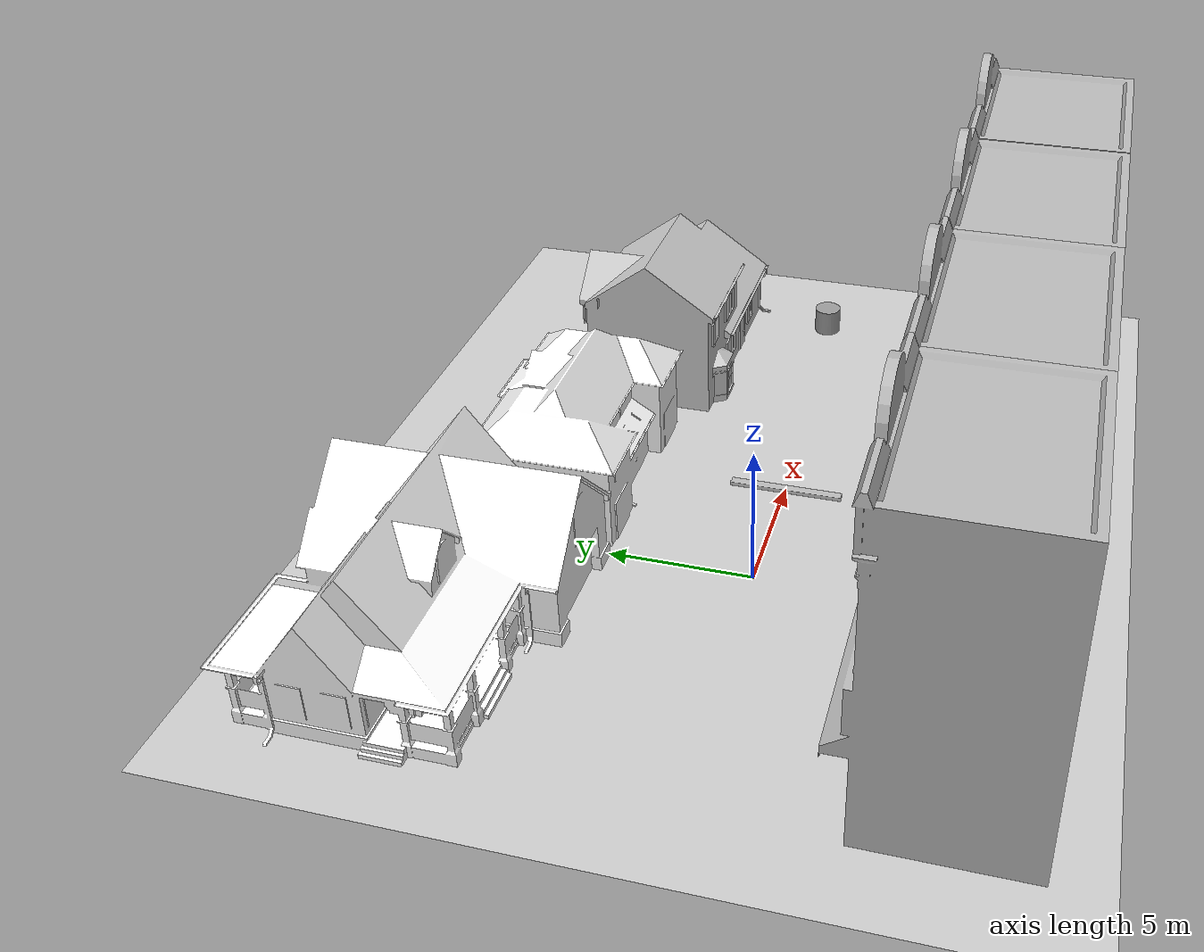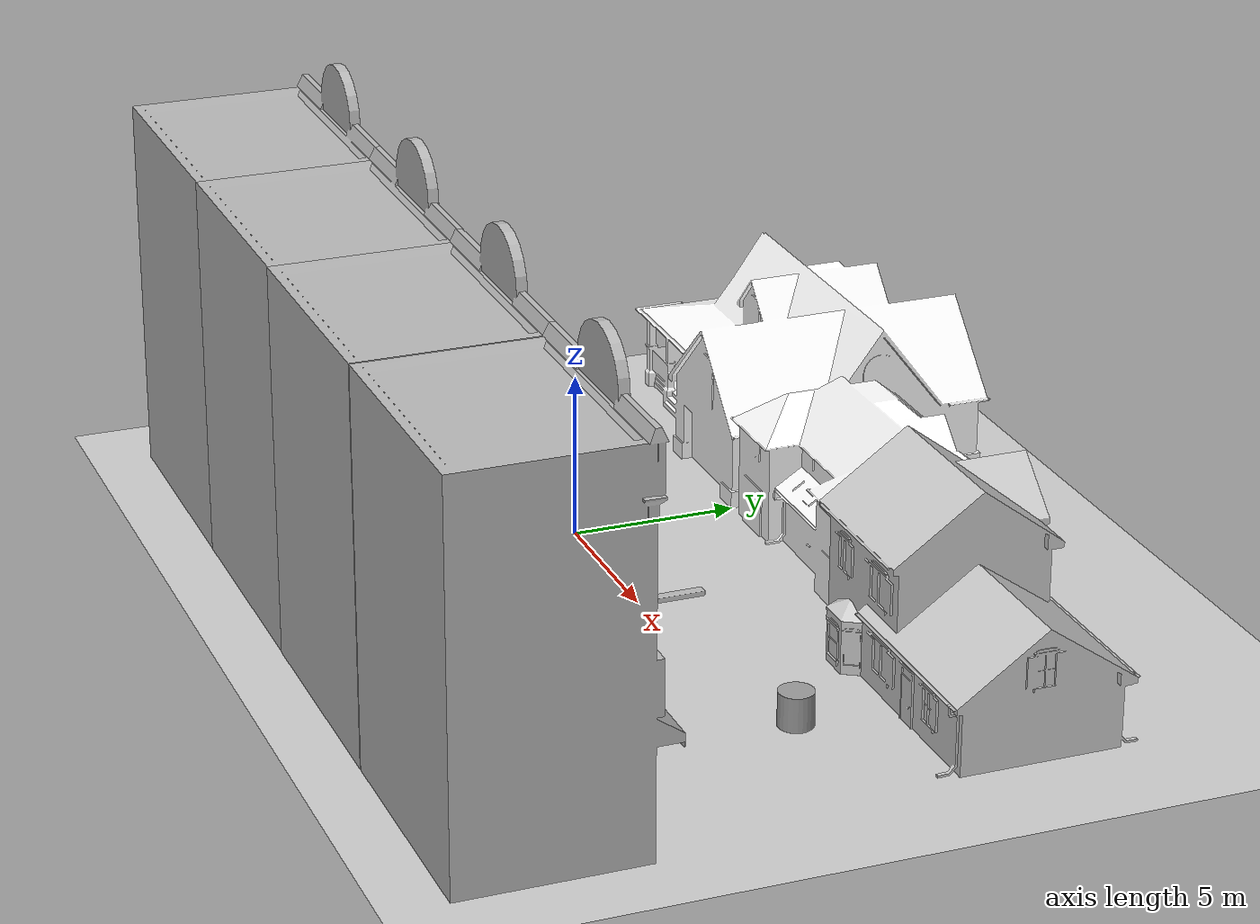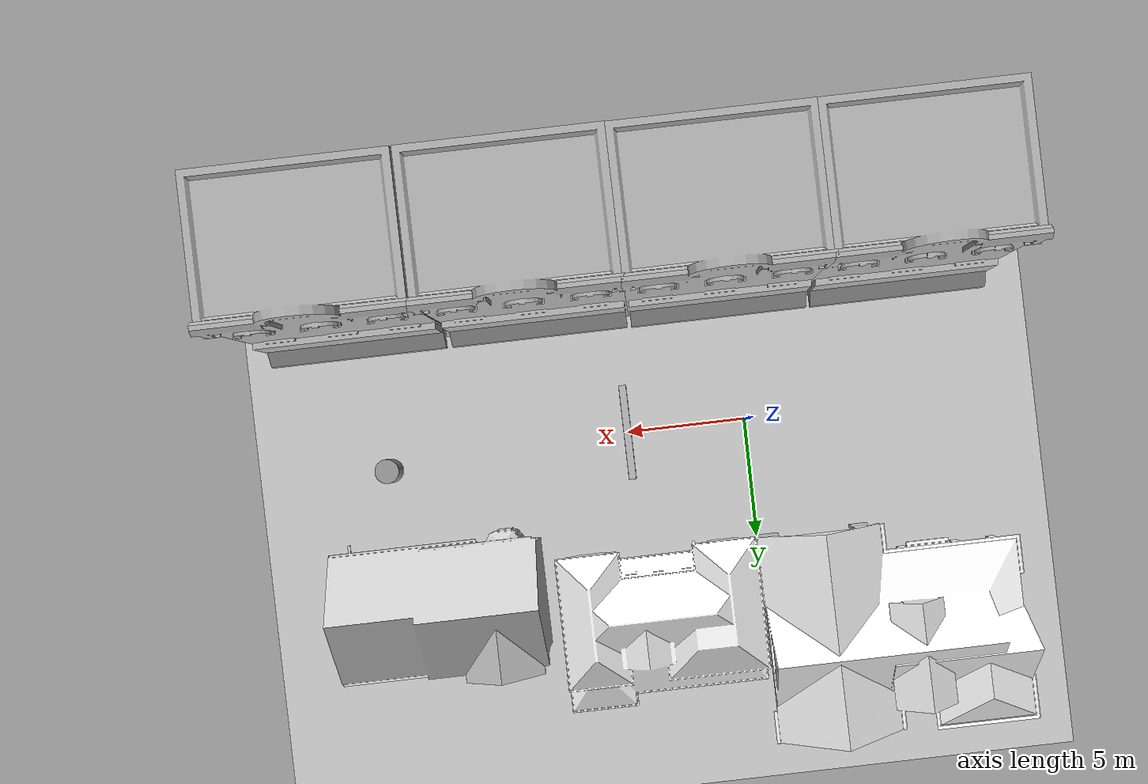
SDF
<sdf version="1.6">
 <world name="default">
  <light name="sun" type="directional">
   <pose>0 0 10 0 -0 0</pose>
   <diffuse>0.8 0.8 0.8 1</diffuse>
   <specular>0.1 0.1 0.1 1</specular>
   <attenuation>
    <range>1000</range>
    <constant>0.9</constant>
    <linear>0.01</linear>
    <quadratic>0.001</quadratic>
   </attenuation>
   <direction>-0.5 0.5 -1</direction>
  </light>
  <model name="ground_plane">
   <static>1</static>
   <link name="link">
    <collision name="collision">
     <geometry><plane><normal>0 0 1</normal><size>100 100</size></plane></geometry>
     <surface><friction><ode><mu>100</mu><mu2>50</mu2></ode></friction></surface>
    </collision>
    <visual name="visual">
     <cast_shadows>0</cast_shadows>
     <geometry><plane><normal>0 0 1</normal><size>100 100</size></plane></geometry>
     <material>
      <script><uri>file://media/materials/scripts/gazebo.material</uri><name>Gazebo/Grey</name></script>
     </material>
    </visual>
   </link>
  </model>
  <gravity>0 0 -9.8</gravity>
  <magnetic_field>6e-06 2.3e-05 -4.2e-05</magnetic_field>
  <atmosphere type="adiabatic"/>
  <physics name="default_physics" default="0" type="ode">
   <max_step_size>0.001</max_step_size>
   <real_time_factor>1</real_time_factor>
   <real_time_update_rate>1000</real_time_update_rate>
  </physics>
  <scene><ambient>0.4 0.4 0.4 1</ambient><background>0.7 0.7 0.7 1</background><shadows>1</shadows></scene>
  <spherical_coordinates>
   <surface_model>EARTH_WGS84</surface_model>
   <latitude_deg>0</latitude_deg>
   <longitude_deg>0</longitude_deg>
   <elevation>0</elevation>
   <heading_deg>0</heading_deg>
  </spherical_coordinates>
  <model name="unit_cylinder_0">
   <pose>15.0037 0.497014 1.44109 0 0 -0.028557</pose>
   <link name="link">
    <inertial>
     <mass>1</mass>
     <inertia><ixx>0.145833</ixx><ixy>0</ixy><ixz>0</ixz><iyy>0.145833</iyy><iyz>0</iyz><izz>0.125</izz></inertia>
    </inertial>
    <collision name="collision">
     <geometry><cylinder><radius>0.5</radius><length>1</length></cylinder></geometry>
    </collision>
    <visual name="visual">
     <geometry><cylinder><radius>0.5</radius><length>1</length></cylinder></geometry>
     <material>
      <script><name>Gazebo/Grey</name><uri>file://media/materials/scripts/gazebo.material</uri></script>
     </material>
    </visual>
   </link>
  </model>
  <model name="jersey_barrier">
   <static>1</static>
   <link name="link">
    <visual name="visual">
     <geometry>
      <mesh><uri>model://jersey_barrier/meshes/jersey_barrier.dae</uri><scale>1 1 1</scale></mesh>
     </geometry>
    </visual>
    <collision name="upright">
     <pose>0 0 0.5715 0 -0 0</pose>
     <geometry><box><size>4.06542 0.3063 1.143</size></box></geometry>
    </collision>
    <collision name="base">
     <pose>0 0 0.032258 0 -0 0</pose>
     <geometry><box><size>4.06542 0.8107 0.064516</size></box></geometry>
    </collision>
    <collision name="base2">
     <pose>0 0 0.1 0 -0 0</pose>
     <geometry><box><size>4.06542 0.65 0.1</size></box></geometry>
    </collision>
    <collision name="base3">
     <pose>0 0 0.2 0 -0 0</pose>
     <geometry><box><size>4.06542 0.5 0.1</size></box></geometry>
    </collision>
    <collision name="left-angle">
     <pose>0 -0.224 0.2401 0.9 -0 0</pose>
     <geometry><box><size>4.06542 0.5 0.064516</size></box></geometry>
    </collision>
    <collision name="right-angle">
     <pose>0 0.224 0.2401 -0.9 0 0</pose>
     <geometry><box><size>4.06542 0.5 0.064516</size></box></geometry>
    </collision>
   </link>
   <pose>5 0 -1.04 0 -0 1.5707</pose>
  </model>
  <model name="House 1">
   <static>1</static>
   <link name="link">
    <collision name="collision">
     <geometry><mesh><uri>model://house_1/meshes/house_1.dae</uri><scale>1 1 1</scale></mesh></geometry>
    </collision>
    <visual name="visual">
     <geometry><mesh><uri>model://house_1/meshes/house_1.dae</uri><scale>1 1 1</scale></mesh></geometry>
     <material>
      <script>
       <uri>model://house_1/materials/scripts</uri>
       <uri>model://house_1/materials/textures</uri>
       <name>House_1/Diffuse</name>
      </script>
      <shader type="normal_map_object_space"><normal_map>House_1_Normal.png</normal_map></shader>
     </material>
    </visual>
   </link>
   <pose>-4.91193 9.45123 0 0 -0 0</pose>
  </model>
  <model name="House 2">
   <static>1</static>
   <link name="link">
    <collision name="collision">
     <geometry><mesh><uri>model://house_2/meshes/house_2.dae</uri><scale>1 1 1</scale></mesh></geometry>
    </collision>
    <visual name="visual">
     <geometry><mesh><uri>model://house_2/meshes/house_2.dae</uri><scale>1 1 1</scale></mesh></geometry>
     <material>
      <script>
       <uri>model://house_2/materials/scripts</uri>
       <uri>model://house_2/materials/textures</uri>
       <name>House_2/Diffuse</name>
      </script>
     </material>
    </visual>
   </link>
   <pose>3.70885 7.52267 0 0 -0 0</pose>
  </model>
  <model name="House 3">
   <static>1</static>
   <link name="link">
    <collision name="collision">
     <geometry><mesh><uri>model://house_3/meshes/house_3.dae</uri><scale>1 1 1</scale></mesh></geometry>
    </collision>
    <visual name="visual">
     <geometry><mesh><uri>model://house_3/meshes/house_3.dae</uri><scale>1 1 1</scale></mesh></geometry>
     <material>
      <script>
       <uri>model://house_3/materials/scripts</uri>
       <uri>model://house_3/materials/textures</uri>
       <name>House_3/Diffuse</name>
      </script>
     </material>
    </visual>
   </link>
   <pose>13.7157 6.37065 0 0 -0 0</pose>
  </model>
  <model name="salon">
   <static>1</static>
   <link name="link">
    <collision name="collision">
     <pose>0 0 5.69469 0 -0 0</pose>
     <geometry><box><size>7.21297 5.37875 11.3894</size></box></geometry>
    </collision>
    <visual name="visual">
     <pose>0 -0.903605 0 0 -0 0</pose>
     <geometry><mesh><uri>model://salon/meshes/salon.dae</uri><scale>1 1 1</scale></mesh></geometry>
    </visual>
   </link>
   <pose>-6.40524 -7.62039 0 0 -0 3.14159</pose>
  </model>
  <model name="salon_clone">
   <static>1</static>
   <link name="link">
    <collision name="collision">
     <pose>0 0 5.69469 0 -0 0</pose>
     <geometry><box><size>7.21297 5.37875 11.3894</size></box></geometry>
    </collision>
    <visual name="visual">
     <pose>0 -0.903605 0 0 -0 0</pose>
     <geometry><mesh><uri>model://salon/meshes/salon.dae</uri><scale>1 1 1</scale></mesh></geometry>
    </visual>
   </link>
   <pose>0.776602 -7.62727 0 0 -0 3.14159</pose>
  </model>
  <model name="salon_clone_0">
   <static>1</static>
   <link name="link">
    <collision name="collision">
     <pose>0 0 5.69469 0 -0 0</pose>
     <geometry><box><size>7.21297 5.37875 11.3894</size></box></geometry>
    </collision>
    <visual name="visual">
     <pose>0 -0.903605 0 0 -0 0</pose>
     <geometry><mesh><uri>model://salon/meshes/salon.dae</uri><scale>1 1 1</scale></mesh></geometry>
    </visual>
   </link>
   <pose>7.9805 -7.64288 0 0 -0 3.14159</pose>
  </model>
  <model name="salon_clone_0_clone">
   <static>1</static>
   <link name="link">
    <collision name="collision">
     <pose>0 0 5.69469 0 -0 0</pose>
     <geometry><box><size>7.21297 5.37875 11.3894</size></box></geometry>
    </collision>
    <visual name="visual">
     <pose>0 -0.903605 0 0 -0 0</pose>
     <geometry><mesh><uri>model://salon/meshes/salon.dae</uri><scale>1 1 1</scale></mesh></geometry>
    </visual>
   </link>
   <pose>15.2558 -7.64353 0 0 -0 3.14159</pose>
  </model>
 </world>
</sdf>
